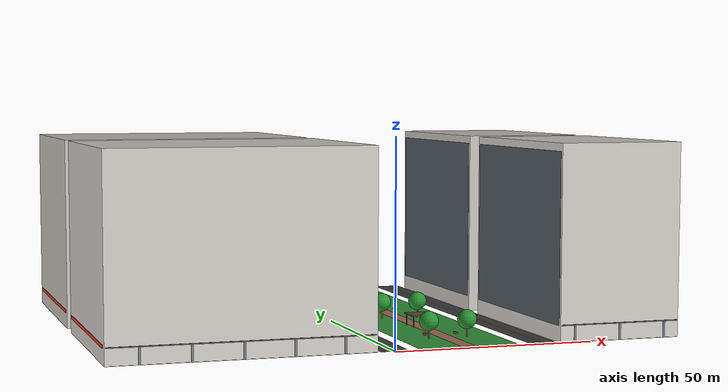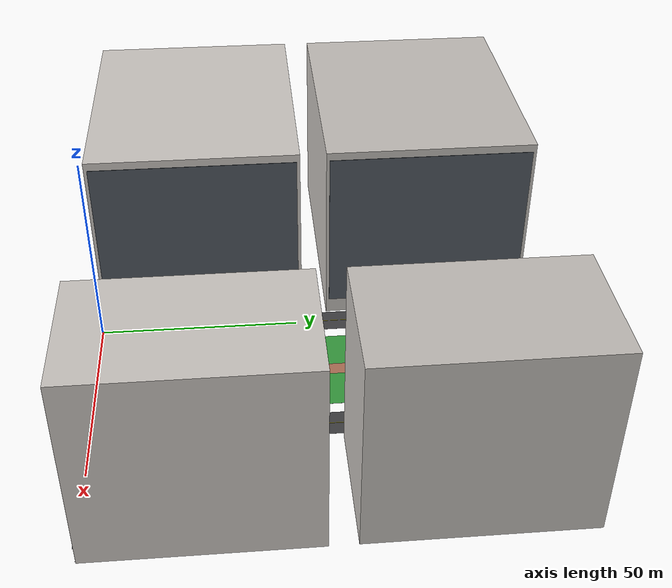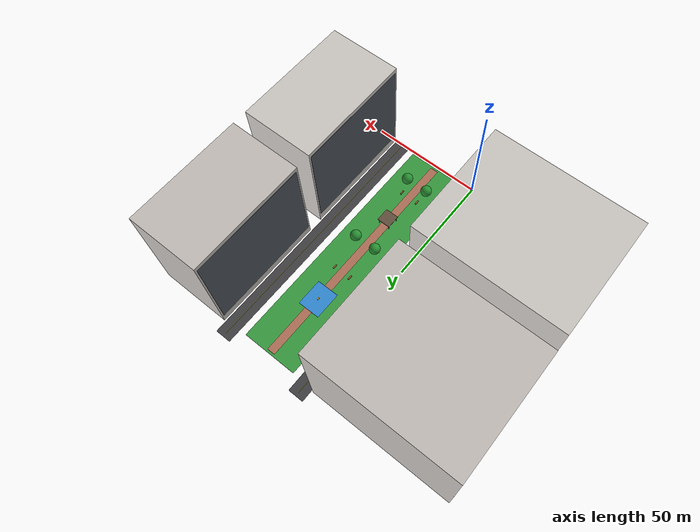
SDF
<?xml version="1.0" ?>
<sdf version="1.8">
  <model name="changyi_residential_block">
    <static>true</static>
    <link name="nordic_block_link">

      <!-- ==================== 物理碰撞剛體 (南排大樓、北排大樓與外側複製棟) ==================== -->
      <!-- 1. 南排大樓內側東棟碰撞體 (South Row Inner: 15層樓, 高48m, 臨光復路與關新路夾角) -->
      <collision name="south_row_inner_col">
        <pose>-37.0 26.0 24.0 0 0 0</pose>
        <geometry><box><size>60.0 52.0 48.0</size></box></geometry>
      </collision>

      <!-- 2. 南排大樓外側西棟碰撞體 (South Row Outer Duplicate: 15層樓, 高48m, 西向外側延伸) -->
      <collision name="south_row_outer_col">
        <pose>-37.0 84.0 24.0 0 0 0</pose>
        <geometry><box><size>60.0 52.0 48.0</size></box></geometry>
      </collision>

      <!-- 3. 北排大樓內側東棟碰撞體 (North Row Inner: 15層樓, 高48m, 臨關新路) -->
      <collision name="north_row_inner_col">
        <pose>58.0 26.0 24.0 0 0 0</pose>
        <geometry><box><size>32.0 52.0 48.0</size></box></geometry>
      </collision>

      <!-- 4. 北排大樓外側西棟碰撞體 (North Row Outer Duplicate: 15層樓, 高48m, 西向外側延伸) -->
      <collision name="north_row_outer_col">
        <pose>58.0 84.0 24.0 0 0 0</pose>
        <geometry><box><size>32.0 52.0 48.0</size></box></geometry>
      </collision>

      <!-- 5. 中庭社區公園地坪剛體 (Park Ground) -->
      <collision name="park_ground_col">
        <pose>20.0 75.0 0.05 0 0 0</pose>
        <geometry><box><size>24.0 68.0 0.10</size></box></geometry>
      </collision>

      <!-- ==================== 1. 南排大樓 (昌益丹麥 / 芬蘭: 臨光復路與關新路夾角) ==================== -->
      <!-- 內側東棟大樓主體 (South Row Inner Block: 15F, 48m) -->
      <visual name="south_inner_main_vis">
        <pose>-36.0 26.0 24.0 0 0 0</pose>
        <geometry><box><size>63.6 51.6 48.0</size></box></geometry>
        <material>
          <ambient>0.75 0.73 0.71 1</ambient>
          <diffuse>0.82 0.80 0.78 1</diffuse>
        </material>
      </visual>

      <!-- 臨關新路 1F 挑高深凹連續騎樓走廊 (East Arcade facing Guanxin Rd) -->
      <visual name="south_east_arcade_floor">
        <pose>-36.0 1.8 0.08 0 0 0</pose>
        <geometry><box><size>63.0 3.6 0.02</size></box></geometry>
        <material><ambient>0.65 0.62 0.60 1</ambient><diffuse>0.72 0.70 0.68 1</diffuse></material>
      </visual>
      <visual name="south_east_arcade_ceiling">
        <pose>-36.0 1.8 4.2 0 0 0</pose>
        <geometry><box><size>63.0 3.6 0.25</size></box></geometry>
        <material><ambient>0.3 0.3 0.32 1</ambient><diffuse>0.35 0.35 0.38 1</diffuse></material>
      </visual>
      <!-- 騎樓結構大圓柱列 (沿關新路) -->
      <visual name="south_col_1"><pose>-60.0 0.4 2.1 0 0 0</pose><geometry><cylinder><radius>0.35</radius><length>4.2</length></cylinder></geometry><material><ambient>0.4 0.42 0.45 1</ambient><diffuse>0.45 0.48 0.50 1</diffuse></material></visual>
      <visual name="south_col_2"><pose>-48.0 0.4 2.1 0 0 0</pose><geometry><cylinder><radius>0.35</radius><length>4.2</length></cylinder></geometry><material><ambient>0.4 0.42 0.45 1</ambient><diffuse>0.45 0.48 0.50 1</diffuse></material></visual>
      <visual name="south_col_3"><pose>-36.0 0.4 2.1 0 0 0</pose><geometry><cylinder><radius>0.35</radius><length>4.2</length></cylinder></geometry><material><ambient>0.4 0.42 0.45 1</ambient><diffuse>0.45 0.48 0.50 1</diffuse></material></visual>
      <visual name="south_col_4"><pose>-24.0 0.4 2.1 0 0 0</pose><geometry><cylinder><radius>0.35</radius><length>4.2</length></cylinder></geometry><material><ambient>0.4 0.42 0.45 1</ambient><diffuse>0.45 0.48 0.50 1</diffuse></material></visual>
      <visual name="south_col_5"><pose>-12.0 0.4 2.1 0 0 0</pose><geometry><cylinder><radius>0.35</radius><length>4.2</length></cylinder></geometry><material><ambient>0.4 0.42 0.45 1</ambient><diffuse>0.45 0.48 0.50 1</diffuse></material></visual>

      <!-- 臨光復路夾角騎樓與店鋪 (Corner Arcade facing Guangfu Rd: X = -67.5m) -->
      <visual name="guangfu_corner_shops">
        <pose>-67.5 26.0 2.1 0 0 0</pose>
        <geometry><box><size>0.2 50.0 3.8</size></box></geometry>
        <material><ambient>0.15 0.25 0.35 0.85</ambient><diffuse>0.20 0.35 0.45 0.85</diffuse><specular>0.9 0.95 1 1</specular></material>
      </visual>
      <visual name="guangfu_corner_sign">
        <pose>-67.8 26.0 4.2 0 0 0</pose>
        <geometry><box><size>0.25 48.0 0.8</size></box></geometry>
        <material><ambient>0.85 0.2 0.1 1</ambient><diffuse>0.92 0.25 0.15 1</diffuse></material>
      </visual>

      <!-- 臨光復路外側店鋪與招牌 (Outer Shops facing Guangfu Rd: X = -67.5m, Y = 84m) -->
      <visual name="guangfu_outer_shops">
        <pose>-67.5 84.0 2.1 0 0 0</pose>
        <geometry><box><size>0.2 50.0 3.8</size></box></geometry>
        <material><ambient>0.15 0.25 0.35 0.85</ambient><diffuse>0.20 0.35 0.45 0.85</diffuse><specular>0.9 0.95 1 1</specular></material>
      </visual>
      <visual name="guangfu_outer_sign">
        <pose>-67.8 84.0 4.2 0 0 0</pose>
        <geometry><box><size>0.25 48.0 0.8</size></box></geometry>
        <material><ambient>0.85 0.2 0.1 1</ambient><diffuse>0.92 0.25 0.15 1</diffuse></material>
      </visual>

      <!-- 外側西棟大樓主體 (South Row Outer Duplicate: 15F, 48m) -->
      <visual name="south_outer_main_vis">
        <pose>-36.0 84.0 24.0 0 0 0</pose>
        <geometry><box><size>63.6 51.6 48.0</size></box></geometry>
        <material>
          <ambient>0.72 0.70 0.68 1</ambient>
          <diffuse>0.78 0.76 0.74 1</diffuse>
        </material>
      </visual>

      <!-- 南排面向社區公園之景觀陽台 (Balconies facing Central Park: X = -4.5m) -->
      <visual name="south_park_balconies_in">
        <pose>-4.5 26.0 25.0 0 0 0</pose>
        <geometry><box><size>0.8 50.0 42.0</size></box></geometry>
        <material><ambient>0.28 0.30 0.32 1</ambient><diffuse>0.32 0.35 0.38 1</diffuse></material>
      </visual>
      <visual name="south_park_balconies_out">
        <pose>-4.5 84.0 25.0 0 0 0</pose>
        <geometry><box><size>0.8 50.0 42.0</size></box></geometry>
        <material><ambient>0.28 0.30 0.32 1</ambient><diffuse>0.32 0.35 0.38 1</diffuse></material>
      </visual>

      <!-- ==================== 2. 北排大樓 (昌益挪威: 北側對稱大樓與外側複製棟) ==================== -->
      <!-- 內側東棟大樓主體 (North Row Inner Block: 15F, 48m) -->
      <visual name="north_inner_main_vis">
        <pose>58.0 26.0 24.0 0 0 0</pose>
        <geometry><box><size>31.6 51.6 48.0</size></box></geometry>
        <material>
          <ambient>0.75 0.73 0.71 1</ambient>
          <diffuse>0.82 0.80 0.78 1</diffuse>
        </material>
      </visual>

      <!-- 北排臨關新路騎樓與商鋪 (7-Eleven / 街邊精品) -->
      <visual name="north_east_arcade_floor">
        <pose>58.0 1.8 0.08 0 0 0</pose>
        <geometry><box><size>31.0 3.6 0.02</size></box></geometry>
        <material><ambient>0.65 0.62 0.60 1</ambient><diffuse>0.72 0.70 0.68 1</diffuse></material>
      </visual>
      <visual name="north_east_arcade_ceiling">
        <pose>58.0 1.8 4.2 0 0 0</pose>
        <geometry><box><size>31.0 3.6 0.25</size></box></geometry>
        <material><ambient>0.3 0.3 0.32 1</ambient><diffuse>0.35 0.35 0.38 1</diffuse></material>
      </visual>
      <visual name="north_col_1"><pose>46.0 0.4 2.1 0 0 0</pose><geometry><cylinder><radius>0.35</radius><length>4.2</length></cylinder></geometry><material><ambient>0.4 0.42 0.45 1</ambient><diffuse>0.45 0.48 0.50 1</diffuse></material></visual>
      <visual name="north_col_2"><pose>58.0 0.4 2.1 0 0 0</pose><geometry><cylinder><radius>0.35</radius><length>4.2</length></cylinder></geometry><material><ambient>0.4 0.42 0.45 1</ambient><diffuse>0.45 0.48 0.50 1</diffuse></material></visual>
      <visual name="north_col_3"><pose>70.0 0.4 2.1 0 0 0</pose><geometry><cylinder><radius>0.35</radius><length>4.2</length></cylinder></geometry><material><ambient>0.4 0.42 0.45 1</ambient><diffuse>0.45 0.48 0.50 1</diffuse></material></visual>

      <!-- 外側西棟大樓主體 (North Row Outer Duplicate: 15F, 48m) -->
      <visual name="north_outer_main_vis">
        <pose>58.0 84.0 24.0 0 0 0</pose>
        <geometry><box><size>31.6 51.6 48.0</size></box></geometry>
        <material>
          <ambient>0.72 0.70 0.68 1</ambient>
          <diffuse>0.78 0.76 0.74 1</diffuse>
        </material>
      </visual>

      <!-- 北排面向社區公園之景觀陽台 (Balconies facing Central Park: X = 42.5m) -->
      <visual name="north_park_balconies_in">
        <pose>42.5 26.0 25.0 0 0 0</pose>
        <geometry><box><size>0.8 50.0 42.0</size></box></geometry>
        <material><ambient>0.28 0.30 0.32 1</ambient><diffuse>0.32 0.35 0.38 1</diffuse></material>
      </visual>
      <visual name="north_park_balconies_out">
        <pose>42.5 84.0 25.0 0 0 0</pose>
        <geometry><box><size>0.8 50.0 42.0</size></box></geometry>
        <material><ambient>0.28 0.30 0.32 1</ambient><diffuse>0.32 0.35 0.38 1</diffuse></material>
      </visual>

      <!-- ==================== 3. 社區中間的公園 (Central Community Park: 26m x 110m) ==================== -->
      <!-- 綠茵大草坪 (Central Lawn) -->
      <visual name="mid_park_lawn">
        <pose>19.0 55.0 0.11 0 0 0</pose>
        <geometry><box><size>25.0 108.0 0.02</size></box></geometry>
        <material>
          <ambient>0.16 0.52 0.18 1</ambient>
          <diffuse>0.22 0.62 0.25 1</diffuse>
        </material>
      </visual>

      <!-- 中庭步道系統 (Central Walking Paths: 紅磚與花崗岩步道) -->
      <visual name="mid_park_walkway">
        <pose>19.0 55.0 0.12 0 0 0</pose>
        <geometry><box><size>3.6 106.0 0.01</size></box></geometry>
        <material><ambient>0.65 0.40 0.30 1</ambient><diffuse>0.70 0.45 0.35 1</diffuse></material>
      </visual>

      <!-- 中庭景觀休閒涼亭 (Courtyard Pavilion) -->
      <visual name="mid_pavilion_roof">
        <pose>19.0 35.0 3.2 0 0 0</pose>
        <geometry><box><size>6.0 6.0 0.3</size></box></geometry>
        <material><ambient>0.3 0.25 0.2 1</ambient><diffuse>0.4 0.32 0.25 1</diffuse></material>
      </visual>
      <visual name="mid_pavilion_p1"><pose>16.5 32.5 1.5 0 0 0</pose><geometry><cylinder><radius>0.12</radius><length>3.0</length></cylinder></geometry><material><ambient>0.25 0.25 0.28 1</ambient><diffuse>0.3 0.3 0.35 1</diffuse></material></visual>
      <visual name="mid_pavilion_p2"><pose>21.5 32.5 1.5 0 0 0</pose><geometry><cylinder><radius>0.12</radius><length>3.0</length></cylinder></geometry><material><ambient>0.25 0.25 0.28 1</ambient><diffuse>0.3 0.3 0.35 1</diffuse></material></visual>
      <visual name="mid_pavilion_p3"><pose>16.5 37.5 1.5 0 0 0</pose><geometry><cylinder><radius>0.12</radius><length>3.0</length></cylinder></geometry><material><ambient>0.25 0.25 0.28 1</ambient><diffuse>0.3 0.3 0.35 1</diffuse></material></visual>
      <visual name="mid_pavilion_p4"><pose>21.5 37.5 1.5 0 0 0</pose><geometry><cylinder><radius>0.12</radius><length>3.0</length></cylinder></geometry><material><ambient>0.25 0.25 0.28 1</ambient><diffuse>0.3 0.3 0.35 1</diffuse></material></visual>

      <!-- 中庭休閒長椅群 (Park Benches) -->
      <visual name="mid_bench1"><pose>15.0 20.0 0.4 0 0 0</pose><geometry><box><size>0.6 2.0 0.45</size></box></geometry><material><ambient>0.45 0.28 0.15 1</ambient><diffuse>0.55 0.35 0.2 1</diffuse></material></visual>
      <visual name="mid_bench2"><pose>23.0 20.0 0.4 0 0 0</pose><geometry><box><size>0.6 2.0 0.45</size></box></geometry><material><ambient>0.45 0.28 0.15 1</ambient><diffuse>0.55 0.35 0.2 1</diffuse></material></visual>
      <visual name="mid_bench3"><pose>15.0 65.0 0.4 0 0 0</pose><geometry><box><size>0.6 2.0 0.45</size></box></geometry><material><ambient>0.45 0.28 0.15 1</ambient><diffuse>0.55 0.35 0.2 1</diffuse></material></visual>
      <visual name="mid_bench4"><pose>23.0 65.0 0.4 0 0 0</pose><geometry><box><size>0.6 2.0 0.45</size></box></geometry><material><ambient>0.45 0.28 0.15 1</ambient><diffuse>0.55 0.35 0.2 1</diffuse></material></visual>

      <!-- 中庭兒童遊樂區 (Children Playground) -->
      <visual name="mid_play_mat"><pose>19.0 80.0 0.125 0 0 0</pose><geometry><box><size>10.0 12.0 0.015</size></box></geometry><material><ambient>0.15 0.45 0.7 1</ambient><diffuse>0.2 0.55 0.85 1</diffuse></material></visual>
      <visual name="mid_spring_rider"><pose>19.0 80.0 0.6 0 0 0</pose><geometry><box><size>0.4 0.9 0.8</size></box></geometry><material><ambient>0.9 0.7 0.1 1</ambient><diffuse>0.95 0.8 0.15 1</diffuse></material></visual>

      <!-- 中庭成蔭綠樹 (Shade Trees) -->
      <visual name="tree_trunk_1"><pose>14.0 15.0 2.0 0 0 0</pose><geometry><cylinder><radius>0.2</radius><length>4.0</length></cylinder></geometry><material><ambient>0.35 0.25 0.15 1</ambient><diffuse>0.42 0.30 0.20 1</diffuse></material></visual>
      <visual name="tree_crown_1"><pose>14.0 15.0 4.5 0 0 0</pose><geometry><sphere><radius>2.4</radius></sphere></geometry><material><ambient>0.12 0.48 0.15 1</ambient><diffuse>0.16 0.58 0.20 1</diffuse></material></visual>
      <visual name="tree_trunk_2"><pose>24.0 15.0 2.0 0 0 0</pose><geometry><cylinder><radius>0.2</radius><length>4.0</length></cylinder></geometry><material><ambient>0.35 0.25 0.15 1</ambient><diffuse>0.42 0.30 0.20 1</diffuse></material></visual>
      <visual name="tree_crown_2"><pose>24.0 15.0 4.5 0 0 0</pose><geometry><sphere><radius>2.4</radius></sphere></geometry><material><ambient>0.12 0.48 0.15 1</ambient><diffuse>0.16 0.58 0.20 1</diffuse></material></visual>
      <visual name="tree_trunk_3"><pose>14.0 50.0 2.0 0 0 0</pose><geometry><cylinder><radius>0.2</radius><length>4.0</length></cylinder></geometry><material><ambient>0.35 0.25 0.15 1</ambient><diffuse>0.42 0.30 0.20 1</diffuse></material></visual>
      <visual name="tree_crown_3"><pose>14.0 50.0 4.5 0 0 0</pose><geometry><sphere><radius>2.4</radius></sphere></geometry><material><ambient>0.12 0.48 0.15 1</ambient><diffuse>0.16 0.58 0.20 1</diffuse></material></visual>
      <visual name="tree_trunk_4"><pose>24.0 50.0 2.0 0 0 0</pose><geometry><cylinder><radius>0.2</radius><length>4.0</length></cylinder></geometry><material><ambient>0.35 0.25 0.15 1</ambient><diffuse>0.42 0.30 0.20 1</diffuse></material></visual>
      <visual name="tree_crown_4"><pose>24.0 50.0 4.5 0 0 0</pose><geometry><sphere><radius>2.4</radius></sphere></geometry><material><ambient>0.12 0.48 0.15 1</ambient><diffuse>0.16 0.58 0.20 1</diffuse></material></visual>

      <!-- ==================== 4. 公園兩旁道路系統 (Dual Community Roads) ==================== -->
      <!-- (A) 南側道路 (South Community Road: 對齊關新一街, X = 0.0m, 寬 7.0m, 長 115m) -->
      <visual name="south_road_asphalt">
        <pose>0.0 57.5 0.10 0 0 0</pose>
        <geometry><box><size>7.0 115.0 0.02</size></box></geometry>
        <material><ambient>0.24 0.24 0.25 1</ambient><diffuse>0.26 0.26 0.27 1</diffuse></material>
      </visual>
      <!-- 南側道路黃色分向實線 (對齊關新一街中心) -->
      <visual name="south_road_yellow_line">
        <pose>0.0 57.5 0.115 0 0 0</pose>
        <geometry><box><size>0.15 112.0 0.002</size></box></geometry>
        <material><ambient>0.9 0.85 0.1 1</ambient><diffuse>0.95 0.9 0.1 1</diffuse></material>
      </visual>

      <!-- (B) 北側道路 (North Community Road: 公園北側道路, X = 38.0m, 寬 7.0m, 長 115m) -->
      <visual name="north_road_asphalt">
        <pose>38.0 57.5 0.10 0 0 0</pose>
        <geometry><box><size>7.0 115.0 0.02</size></box></geometry>
        <material><ambient>0.24 0.24 0.25 1</ambient><diffuse>0.26 0.26 0.27 1</diffuse></material>
      </visual>
      <!-- 北側道路黃色分向實線 -->
      <visual name="north_road_yellow_line">
        <pose>38.0 57.5 0.115 0 0 0</pose>
        <geometry><box><size>0.15 112.0 0.002</size></box></geometry>
        <material><ambient>0.9 0.85 0.1 1</ambient><diffuse>0.95 0.9 0.1 1</diffuse></material>
      </visual>

    </link>
  </model>
</sdf>
